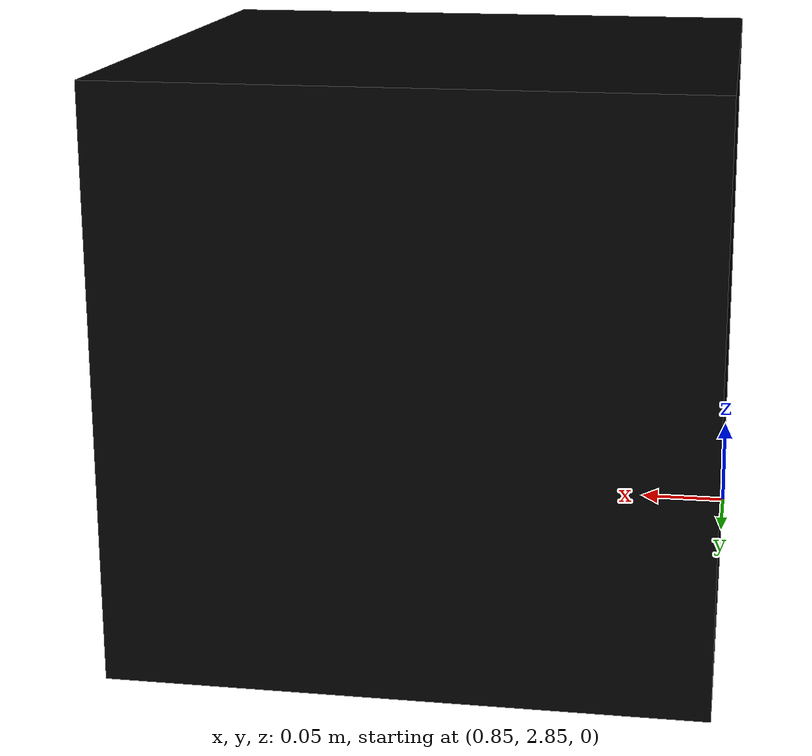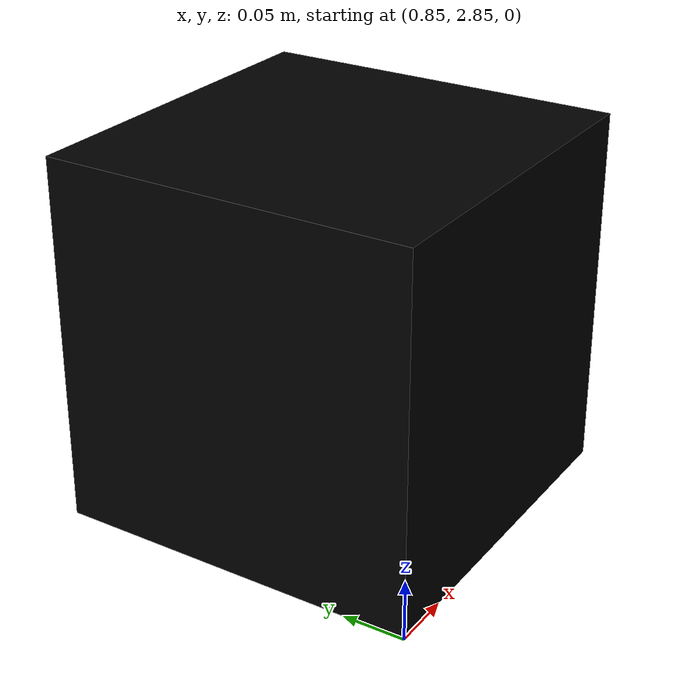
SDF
<?xml version='1.0'?>
<sdf version='1.4'>
  <model name="AruCo_Block_12">
    <static>true</static>
    <link name='chassis'>
            <pose>1 3 0.15 0 0 0</pose>

            <collision name='collision'>
              <geometry>
                <box>
                  <size>.3 .3 .3</size>
                </box>
              </geometry>
            </collision>

            <visual name='visual_12'>
              <geometry>
                <box>
                  <size>.3 .3 .3</size>
                </box>
              </geometry>
              <material>
                <script>
                <uri>model://AruCo_Block_12/materials/scripts</uri>
                <uri>model://AruCo_Block_12/materials/textures</uri>
                <name>block12</name>
                </script>
                <ambient>0 0 0 1</ambient>
                <diffuse>0 0 0 1</diffuse>
                <specular>0 0 0 0</specular>
                <emissive>1 1 1 1</emissive>
              </material>
            </visual>
          </link>
  </model>
</sdf>
